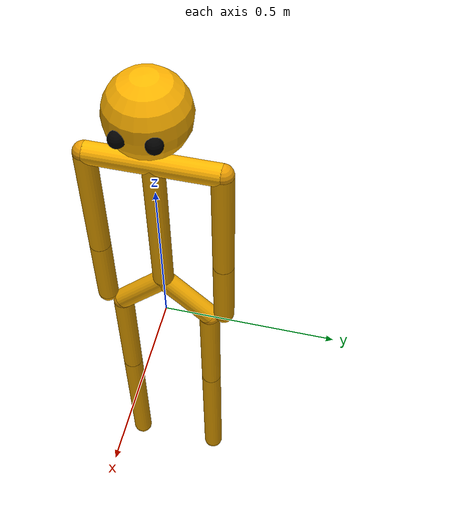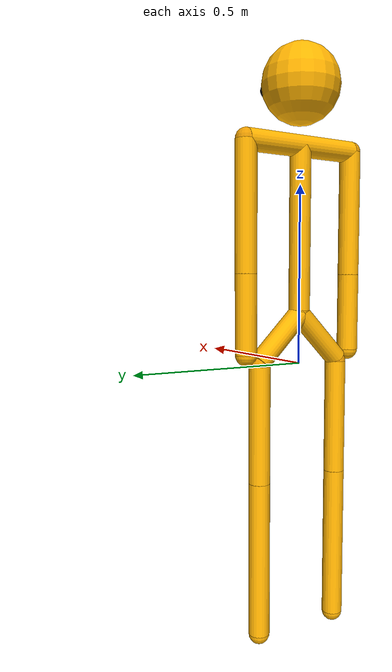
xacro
<?xml version="1.0"?>
<robot xmlns:xacro="http://www.ros.org/wiki/xacro" name="human">

    <!-- User-settable parameters (eg, xacro human-tpl.xacro id:=xyz) -->
    <xacro:property name="id" value="$(arg id)" />
    <xacro:property name="height" value="$(arg height)" />

    <!-- Parameters defaults -->
    <xacro:arg name="id" default="default" />
    <xacro:arg name="height" default="1.65" />

    <!-- human body proportions taken from https://www.thedrawingsource.com/figure-drawing-proportions.html -->
    <xacro:property name="size_unit" value="${height/7.5}" />
    <xacro:property name="head_radius" value="${size_unit/2}" />
    <xacro:property name="neck_length" value="${size_unit * 0.25}" />
    <xacro:property name="neck_shoulder_length" value="${size_unit*0.8}" />
    <xacro:property name="upperarm_length" value="${size_unit*1.6}" />
    <xacro:property name="forearm_length" value="${size_unit}" />
    <xacro:property name="torso_height" value="${size_unit*2.75}" />
    <xacro:property name="waist_length" value="${size_unit*1.2}" />
    <xacro:property name="tight_length" value="${size_unit*1.5}" />
    <xacro:property name="tibia_length" value="${size_unit*2}" />

    <xacro:property name="limb_radius" value="0.03" />

    <!-- Materials -->
    <material name="yellow-skin">
        <color rgba="1 0.7 0 1" />
    </material>

    <material name="yellow-skin-dark">
        <color rgba="0.9 0.6 0 1" />
    </material>

    <material name="black">
        <color rgba="0 0 0 1" />
    </material>

    <link name="body_${id}">
    </link>

    <link name="waist_${id}">
    </link>

    <link name="torso_${id}">
        <visual>
            <geometry>
                <cylinder length="${3 * torso_height / 4}" radius="${limb_radius}"/>
            </geometry>
            <material name="yellow-skin" />
            <origin rpy="0 0 0" xyz="0 0 -${3 * torso_height / 8}" />
        </visual>
        <visual>
            <geometry>
                <cylinder length="${2 * neck_shoulder_length}" radius="${limb_radius}"/>
            </geometry>
            <material name="yellow-skin" />
            <origin rpy="${pi / 2} 0 0" xyz="0 0 0" />
        </visual>
        <visual>
            <geometry>
                <cylinder length="${waist_length/1.41}" radius="${limb_radius}"/>
            </geometry>
            <material name="yellow-skin" />
            <origin rpy="${-pi / 4} 0 0" xyz="0 -${waist_length / 4} -${7 * torso_height / 8}" />
        </visual>
        <visual>
            <geometry>
                <cylinder length="${waist_length/1.41}" radius="${limb_radius}"/>
            </geometry>
            <material name="yellow-skin" />
            <origin rpy="${pi / 4} 0 0" xyz="0 ${waist_length / 4} -${7 * torso_height / 8}" />
        </visual>
        <visual>
            <geometry>
                <sphere radius="${limb_radius}"/>
            </geometry>
            <material name="yellow-skin" />
            <origin rpy="0 0 0" xyz="0 0 -${3 * torso_height / 4}" />
        </visual>
    </link>

    <joint name="torso_${id}" type="fixed">
        <parent link="waist_${id}"/>
        <child link="torso_${id}"/>
        <origin rpy="0 0 0" xyz="0 0 ${torso_height}" />
    </joint>

    <joint name="waist_${id}" type="revolute">
        <axis xyz="0 1 0" />
        <limit effort="1000" lower="-.2" upper="1." velocity="0.5" />
        <parent link="body_${id}"/>
        <child link="waist_${id}"/>
        <origin rpy="0 0 0" xyz="0 0 0" />
    </joint>

    <link name="r_head_${id}">
    </link>
    <link name="y_head_${id}">
    </link>
    <link name="p_head_${id}">
    </link>

    <link name="head_${id}">
        <visual>
            <geometry>
                <sphere radius="${head_radius}"/>
            </geometry>
            <material name="yellow-skin" />
            <origin rpy="0 0 0" xyz="${-head_radius/2} 0 0" />
        </visual>
        <!-- eyes -->
        <visual>
            <geometry>
                <sphere radius="${head_radius/5}"/>
            </geometry>
            <material name="black" />
            <origin rpy="0 0 0" xyz="${head_radius * .9 - head_radius/2} ${2*head_radius/5} 0" />
        </visual>
        <visual>
            <geometry>
                <sphere radius="${head_radius/5}"/>
            </geometry>
            <material name="black" />
            <origin rpy="0 0 0" xyz="${head_radius * .9 - head_radius/2} -${2*head_radius/5} 0" />
        </visual>
    </link>
    <joint name="r_head_${id}" type="revolute">
        <axis xyz="1 0 0" />
        <limit effort="1000" lower="-1." upper="1." velocity="0.5" />
        <parent link="torso_${id}"/>
        <child link="r_head_${id}"/>
        <origin rpy="0 0 0" xyz="0 0 ${neck_length}" />
    </joint>
    <joint name="y_head_${id}" type="revolute">
        <axis xyz="0 0 1" />
        <limit effort="1000" lower="-1.4" upper="1.4" velocity="0.5" />
        <parent link="r_head_${id}"/>
        <child link="y_head_${id}"/>
        <origin rpy="0 0 0" xyz="0 0 0" />
    </joint>
    <joint name="p_head_${id}" type="revolute">
        <axis xyz="0 -1 0" />
        <limit effort="1000" lower="-1.5" upper="1.5" velocity="0.5" />
        <parent link="y_head_${id}"/>
        <child link="p_head_${id}"/>
        <origin rpy="0 0 0" xyz="0 0 0" />
    </joint>
    <joint name="head_${id}" type="fixed">
        <parent link="p_head_${id}"/>
        <child link="head_${id}"/>
        <origin rpy="0 0 0" xyz="${head_radius/2} 0 ${head_radius}" />
    </joint>

    <xacro:macro name="limb_segment" params="name reflect length parent attachment_origin attachment_rotation joint_name joint_axis joint_min_limit joint_max_limit">
        <link name="${name}">
            <visual>
                <geometry>
                    <cylinder length="${length}" radius="${limb_radius}"/>
                </geometry>
                <material name="yellow-skin" />
                <origin rpy="0 0 0" xyz="0 0 -${length/2}" />
            </visual>
            <visual>
                <geometry>
                    <sphere radius="${limb_radius}"/>
                </geometry>
                <material name="yellow-skin" />
                <origin rpy="0 0 0" xyz="0 0 -${length}" />
            </visual>
        </link>

        <joint name="${joint_name}" type="revolute">
            <axis xyz="${joint_axis}" />
            <limit effort="1000" lower="${joint_min_limit}" upper="${joint_max_limit}" velocity="0.5" />
            <parent link="${parent}"/>
            <child link="${name}"/>
            <origin rpy="${attachment_rotation}" xyz="${attachment_origin}" />
        </joint>
    </xacro:macro>

    <xacro:macro name="arm" params="suffix parent reflect">
        <link name="${suffix}_y_shoulder_${id}">
            <visual>
            <geometry>
                <sphere radius="${limb_radius}"/>
            </geometry>
            <material name="yellow-skin-dark" />
            <origin rpy="0 0 0" xyz="0 0 0" />
        </visual>
        </link>
        <joint name="${suffix}_y_shoulder_${id}" type="revolute">
            <axis xyz="0 0 ${reflect * -1}" />
            <limit effort="1000" lower="-1.1" upper="1.9" velocity="0.5" />
            <parent link="${parent}"/>
            <child link="${suffix}_y_shoulder_${id}"/>
            <origin rpy="0 0 0" xyz="0 ${reflect * neck_shoulder_length} 0" />
        </joint>
        <link name="${suffix}_p_shoulder_${id}">
        </link>
        <joint name="${suffix}_p_shoulder_${id}" type="revolute">
            <axis xyz="${reflect} 0 0" />
            <limit effort="1000" lower="-0.4" upper="3.3" velocity="0.5" />
            <parent link="${suffix}_y_shoulder_${id}"/>
            <child link="${suffix}_p_shoulder_${id}"/>
            <origin rpy="0 0 0" xyz="0 0 0" />
        </joint>
        <xacro:limb_segment name="${suffix}_shoulder_${id}"
                     length = "${upperarm_length}"
                     reflect="${reflect}"
                     parent="${suffix}_p_shoulder_${id}"
                     attachment_origin="0 0 0"
                     attachment_rotation="0 0 0"
                     joint_name="${suffix}_r_shoulder_${id}"
                     joint_axis="0 0 ${reflect}"
                     joint_min_limit="-1.7"
                     joint_max_limit="1.5" />
         <xacro:limb_segment name="${suffix}_elbow_${id}"
                     length = "${forearm_length}"
                     reflect="${reflect}"
                     parent="${suffix}_shoulder_${id}"
                     attachment_origin="0 0 -${upperarm_length}"
                     attachment_rotation="0 0 0"
                     joint_name="${suffix}_elbow_${id}"
                     joint_axis="0 -1 0"
                     joint_min_limit="0"
                     joint_max_limit="2.5" />

        <link name="${suffix}_wrist_${id}">
        </link>
        <joint name="${suffix}_wrist_${id}" type="fixed">
            <parent link="${suffix}_elbow_${id}"/>
            <child link="${suffix}_wrist_${id}"/>
            <origin rpy="0 0 0" xyz="0 0 -${forearm_length}" />
        </joint>

    </xacro:macro>

    <xacro:arm suffix="l" reflect="1" parent="torso_${id}" />
    <xacro:arm suffix="r" reflect="-1" parent="torso_${id}" />

    <xacro:macro name="leg" params="suffix parent reflect">
        <link name="${suffix}_y_hip_${id}">
            <visual>
            <geometry>
                <sphere radius="${limb_radius}"/>
            </geometry>
            <material name="yellow-skin-dark" />
            <origin rpy="0 0 0" xyz="0 0 0" />
        </visual>
        </link>
        <joint name="${suffix}_y_hip_${id}" type="revolute">
            <axis xyz="0 0 -1" />
            <limit effort="1000" lower="-.1" upper="0.6" velocity="0.5" />
            <parent link="${parent}"/>
            <child link="${suffix}_y_hip_${id}"/>
            <origin rpy="0 0 0" xyz="0 ${reflect * waist_length/2} 0" />
        </joint>
        <link name="${suffix}_p_hip_${id}">
        </link>
        <joint name="${suffix}_p_hip_${id}" type="revolute">
            <axis xyz="${reflect} 0 0" />
            <limit effort="1000" lower="-0.4" upper="3.3" velocity="0.5" />
            <parent link="${suffix}_y_hip_${id}"/>
            <child link="${suffix}_p_hip_${id}"/>
            <origin rpy="0 0 0" xyz="0 0 0" />
        </joint>
        <xacro:limb_segment name="${suffix}_hip_${id}"
                     length = "${tight_length}"
                     reflect="${reflect}"
                     parent="${suffix}_p_hip_${id}"
                     attachment_origin="0 0 0"
                     attachment_rotation="0 0 0"
                     joint_name="${suffix}_r_hip_${id}"
                     joint_axis="0 -1 0"
                     joint_min_limit="-.4"
                     joint_max_limit="0.7" />
        <xacro:limb_segment name="${suffix}_knee_${id}"
                     length = "${tibia_length}"
                     reflect="${reflect}"
                     parent="${suffix}_hip_${id}"
                     attachment_origin="0 0 -${tight_length}"
                     attachment_rotation="0 0 0"
                     joint_name="${suffix}_knee_${id}"
                     joint_axis="0 -1 0"
                     joint_min_limit="-2.5"
                     joint_max_limit="0" />
        <link name="${suffix}_ankle_${id}">
        </link>
        <joint name="${suffix}_ankle_${id}" type="fixed">
            <parent link="${suffix}_knee_${id}"/>
            <child link="${suffix}_ankle_${id}"/>
            <origin rpy="0 0 0" xyz="0 0 -${tibia_length}" />
        </joint>

    </xacro:macro>

    <xacro:leg suffix="l" reflect="1" parent="body_${id}" />
    <xacro:leg suffix="r" reflect="-1" parent="body_${id}" />

</robot>
